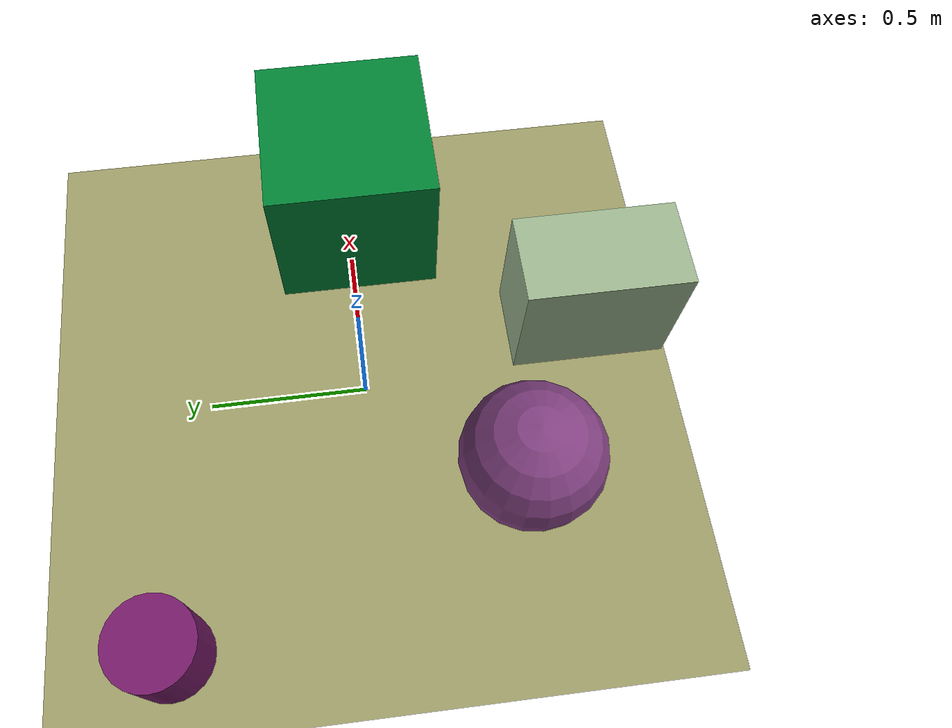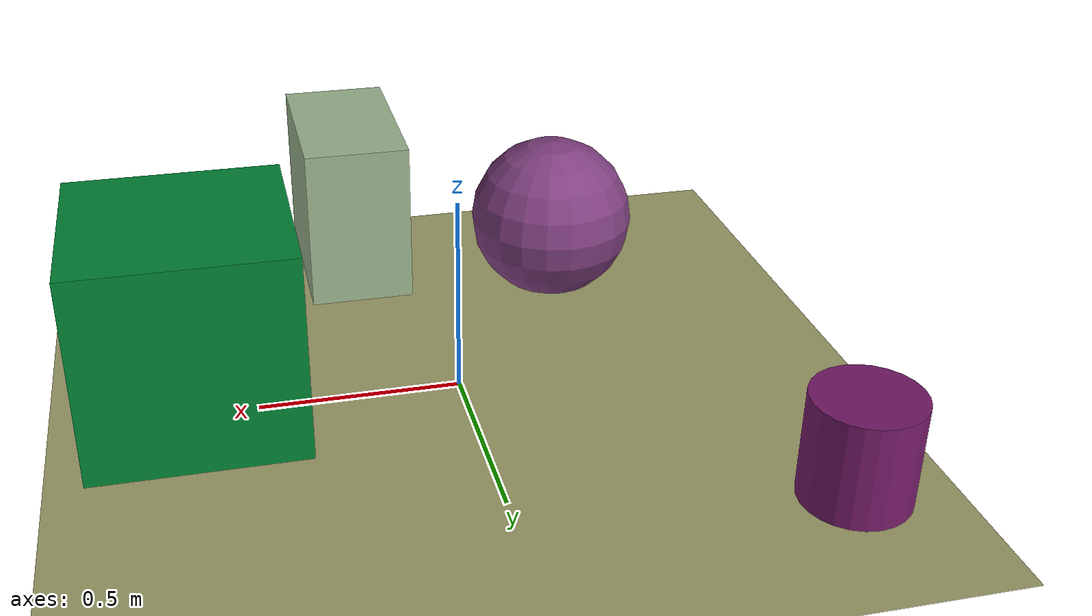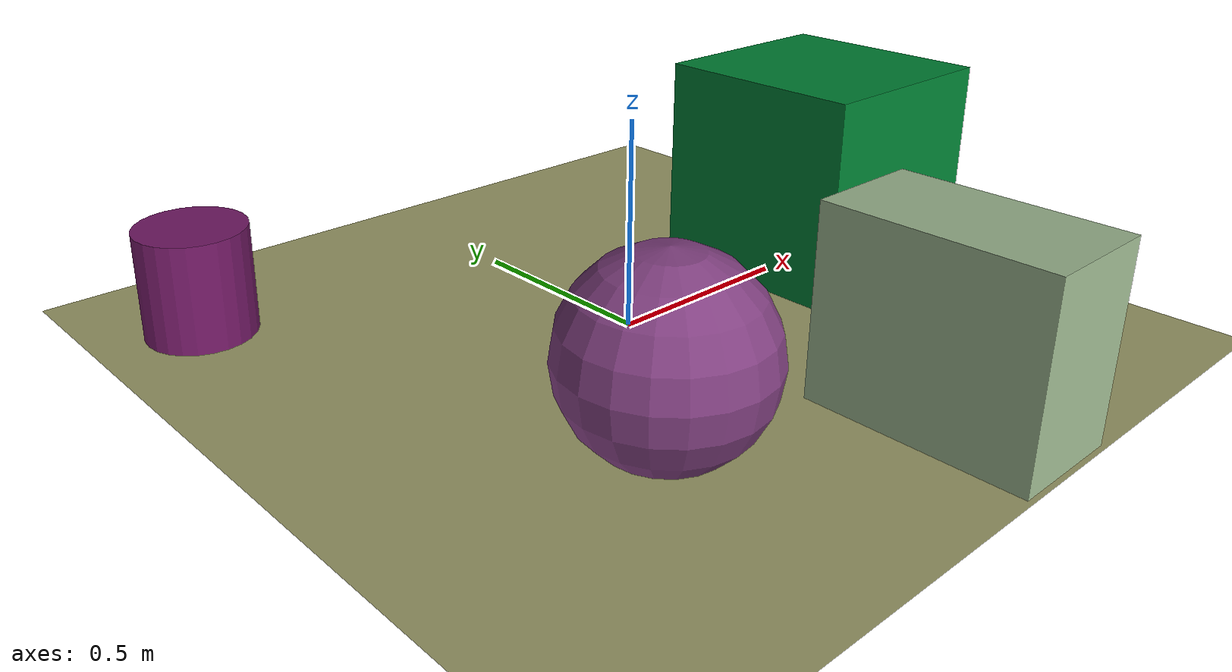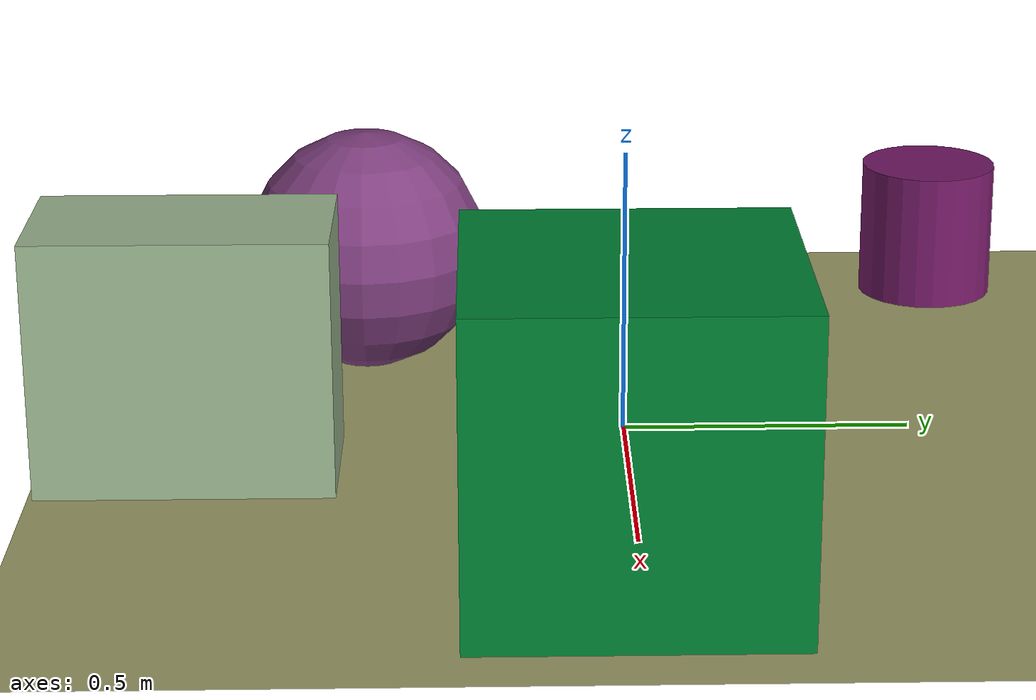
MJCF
<mujoco>
   <asset>
<texture type="skybox" builtin="gradient" rgb1="0.0 0.7 0.9" rgb2="0.1 0.0 0.4" width="256" height="256"/>
<texture name="flat_0" builtin="flat" rgb1="0.0 0.5 0.2" rgb2="0.0 0.5 0.2"  width="200" height="200"/>
<texture name="checker_1" builtin="checker" type="2d" rgb1="0.9 0.2 0.1" rgb2="0.0 0.0 0.7" width="200" height="200"/>
<texture name="gradient_2" builtin="gradient" rgb1="0.8 0.5 0.4" rgb2="0.2 0.0 0.6" width="200" height="200"/>
<texture name="gradient_3" builtin="gradient" rgb1="1.0 0.8 0.2" rgb2="0.2 0.6 0.9" width="200" height="200"/><material name="flat_0_mat" reflectance="0" texture="flat_0" texuniform="true"/>
<material name="checker_1_mat" reflectance="0" texrepeat="2 2" texture="checker_1" texuniform="false" />
<material name="gradient_2_mat" reflectance="0" texture="gradient_2" texuniform="true"/>
<material name="gradient_3_mat" reflectance="0" texture="gradient_3" texuniform="true"/>
   </asset>

   <worldbody>
      <light diffuse=".9 .9 .9" pos="0 0 3" dir="0 0 -1"/>
     <geom type="plane" size="1 1 0.1" rgba="0.6 0.6 0.4 1"/>
<geom type="box" pos="0.65 -0.02 0.26" size="0.26 0.26 0.26" material="flat_0_mat" />
<geom type="cylinder" pos="-0.76 0.64 0.13" size="0.13 0.13 0.13" material="checker_1_mat" />
<geom type="sphere" pos="-0.36 -0.46 0.22" size="0.22 0.22 0.22" material="gradient_2_mat" />
<geom type="box" pos="0.17 -0.74 0.22" size="0.14 0.25 0.22" material="gradient_3_mat" /><camera euler="60 0 180" fovy="60" name="camera_a" pos="0 -1.5 1"></camera>   </worldbody>
</mujoco>
